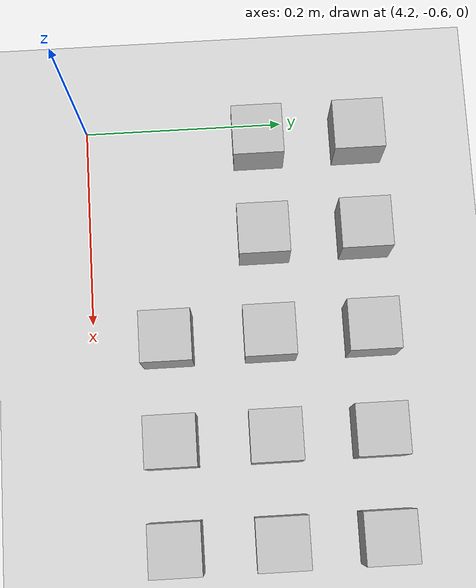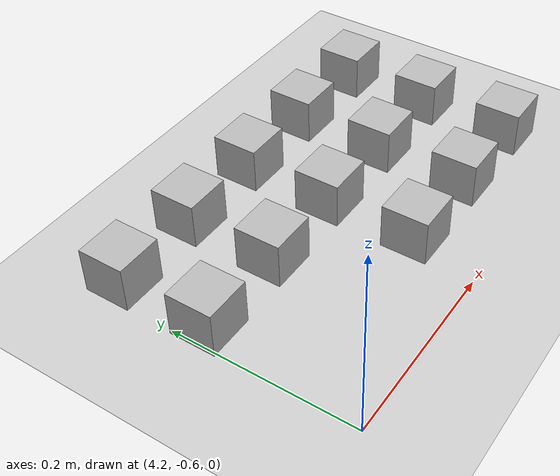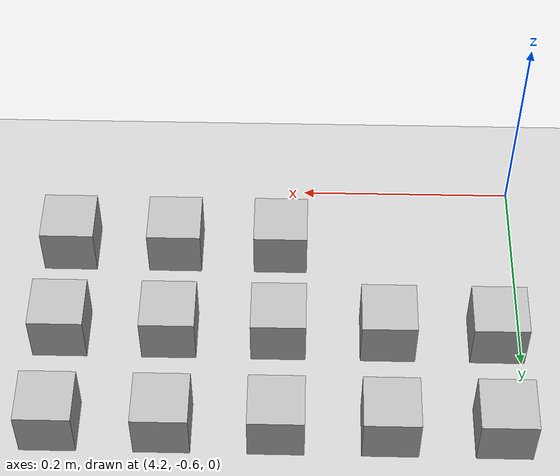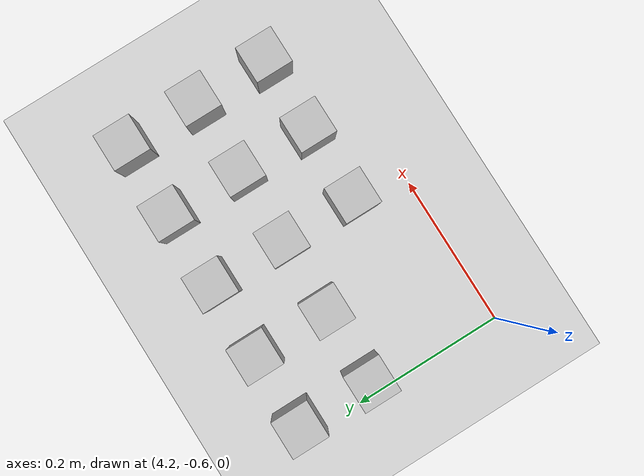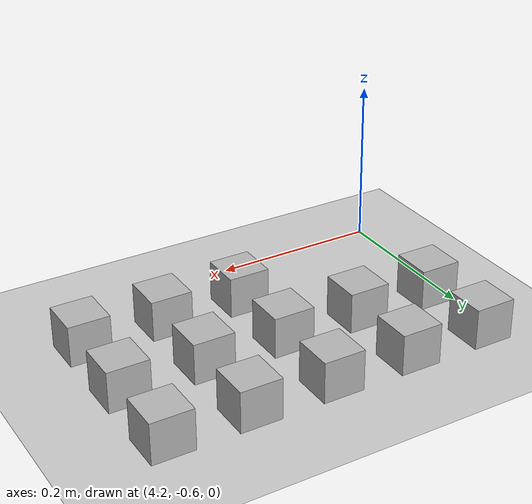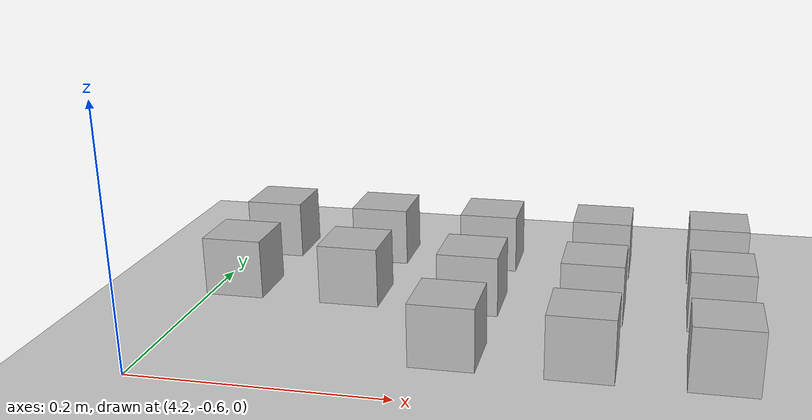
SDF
<sdf version="1.6">
 <world name="default">
  <model name="ground_plane">
   <static>1</static>
   <link name="link">
    <collision name="collision">
     <geometry><plane><normal>0 0 1</normal><size>100 100</size></plane></geometry>
     <surface><friction><ode><mu>100</mu><mu2>50</mu2></ode></friction></surface>
    </collision>
    <visual name="visual">
     <cast_shadows>0</cast_shadows>
     <geometry><plane><normal>0 0 1</normal><size>100 100</size></plane></geometry>
     <material>
      <script><uri>file://media/materials/scripts/gazebo.material</uri><name>Gazebo/Grey</name></script>
     </material>
    </visual>
   </link>
  </model>
  <model name="at42">
   <static>0</static>
   <link name="link">
    <inertial>
     <mass>0.01</mass>
     <inertia><ixx>4e-05</ixx><ixy>0</ixy><ixz>0</ixz><iyy>4e-05</iyy><iyz>0</iyz><izz>4e-05</izz></inertia>
    </inertial>
    <visual name="visual">
     <geometry><box><size>0.05 0.05 0.05</size></box></geometry>
     <material>
      <script>
       <uri>model://at0/materials/scripts</uri>
       <uri>model://at0/materials/textures</uri>
       <name>at0/Diffuse</name>
      </script>
     </material>
    </visual>
    <collision name="collision">
     <geometry><box><size>0.05 0.05 0.05</size></box></geometry>
     <surface><friction><ode><mu>0.8</mu><mu2>0.7</mu2></ode></friction></surface>
    </collision>
   </link>
   <pose>4.42228 -0.52543 0.025 0 -0 0</pose>
  </model>
  <model name="at43">
   <static>0</static>
   <link name="link">
    <inertial>
     <mass>0.01</mass>
     <inertia><ixx>4e-05</ixx><ixy>0</ixy><ixz>0</ixz><iyy>4e-05</iyy><iyz>0</iyz><izz>4e-05</izz></inertia>
    </inertial>
    <visual name="visual">
     <geometry><box><size>0.05 0.05 0.05</size></box></geometry>
     <material>
      <script>
       <uri>model://at0/materials/scripts</uri>
       <uri>model://at0/materials/textures</uri>
       <name>at0/Diffuse</name>
      </script>
     </material>
    </visual>
    <collision name="collision">
     <geometry><box><size>0.05 0.05 0.05</size></box></geometry>
     <surface><friction><ode><mu>0.8</mu><mu2>0.7</mu2></ode></friction></surface>
    </collision>
   </link>
   <pose>4.52228 -0.52543 0.025 0 -0 0</pose>
  </model>
  <model name="at44">
   <static>0</static>
   <link name="link">
    <inertial>
     <mass>0.01</mass>
     <inertia><ixx>4e-05</ixx><ixy>0</ixy><ixz>0</ixz><iyy>4e-05</iyy><iyz>0</iyz><izz>4e-05</izz></inertia>
    </inertial>
    <visual name="visual">
     <geometry><box><size>0.05 0.05 0.05</size></box></geometry>
     <material>
      <script>
       <uri>model://at0/materials/scripts</uri>
       <uri>model://at0/materials/textures</uri>
       <name>at0/Diffuse</name>
      </script>
     </material>
    </visual>
    <collision name="collision">
     <geometry><box><size>0.05 0.05 0.05</size></box></geometry>
     <surface><friction><ode><mu>0.8</mu><mu2>0.7</mu2></ode></friction></surface>
    </collision>
   </link>
   <pose>4.62228 -0.52543 0.025 0 -0 0</pose>
  </model>
  <model name="at48">
   <static>0</static>
   <link name="link">
    <inertial>
     <mass>0.01</mass>
     <inertia><ixx>4e-05</ixx><ixy>0</ixy><ixz>0</ixz><iyy>4e-05</iyy><iyz>0</iyz><izz>4e-05</izz></inertia>
    </inertial>
    <visual name="visual">
     <geometry><box><size>0.05 0.05 0.05</size></box></geometry>
     <material>
      <script>
       <uri>model://at0/materials/scripts</uri>
       <uri>model://at0/materials/textures</uri>
       <name>at0/Diffuse</name>
      </script>
     </material>
    </visual>
    <collision name="collision">
     <geometry><box><size>0.05 0.05 0.05</size></box></geometry>
     <surface><friction><ode><mu>0.8</mu><mu2>0.7</mu2></ode></friction></surface>
    </collision>
   </link>
   <pose>4.22228 -0.42543 0.025 0 -0 0</pose>
  </model>
  <model name="at49">
   <static>0</static>
   <link name="link">
    <inertial>
     <mass>0.01</mass>
     <inertia><ixx>4e-05</ixx><ixy>0</ixy><ixz>0</ixz><iyy>4e-05</iyy><iyz>0</iyz><izz>4e-05</izz></inertia>
    </inertial>
    <visual name="visual">
     <geometry><box><size>0.05 0.05 0.05</size></box></geometry>
     <material>
      <script>
       <uri>model://at0/materials/scripts</uri>
       <uri>model://at0/materials/textures</uri>
       <name>at0/Diffuse</name>
      </script>
     </material>
    </visual>
    <collision name="collision">
     <geometry><box><size>0.05 0.05 0.05</size></box></geometry>
     <surface><friction><ode><mu>0.8</mu><mu2>0.7</mu2></ode></friction></surface>
    </collision>
   </link>
   <pose>4.32228 -0.42543 0.025 0 -0 0</pose>
  </model>
  <model name="at50">
   <static>0</static>
   <link name="link">
    <inertial>
     <mass>0.01</mass>
     <inertia><ixx>4e-05</ixx><ixy>0</ixy><ixz>0</ixz><iyy>4e-05</iyy><iyz>0</iyz><izz>4e-05</izz></inertia>
    </inertial>
    <visual name="visual">
     <geometry><box><size>0.05 0.05 0.05</size></box></geometry>
     <material>
      <script>
       <uri>model://at0/materials/scripts</uri>
       <uri>model://at0/materials/textures</uri>
       <name>at0/Diffuse</name>
      </script>
     </material>
    </visual>
    <collision name="collision">
     <geometry><box><size>0.05 0.05 0.05</size></box></geometry>
     <surface><friction><ode><mu>0.8</mu><mu2>0.7</mu2></ode></friction></surface>
    </collision>
   </link>
   <pose>4.42228 -0.42543 0.025 0 -0 0</pose>
  </model>
  <model name="at51">
   <static>0</static>
   <link name="link">
    <inertial>
     <mass>0.01</mass>
     <inertia><ixx>4e-05</ixx><ixy>0</ixy><ixz>0</ixz><iyy>4e-05</iyy><iyz>0</iyz><izz>4e-05</izz></inertia>
    </inertial>
    <visual name="visual">
     <geometry><box><size>0.05 0.05 0.05</size></box></geometry>
     <material>
      <script>
       <uri>model://at0/materials/scripts</uri>
       <uri>model://at0/materials/textures</uri>
       <name>at0/Diffuse</name>
      </script>
     </material>
    </visual>
    <collision name="collision">
     <geometry><box><size>0.05 0.05 0.05</size></box></geometry>
     <surface><friction><ode><mu>0.8</mu><mu2>0.7</mu2></ode></friction></surface>
    </collision>
   </link>
   <pose>4.52228 -0.42543 0.025 0 -0 0</pose>
  </model>
  <model name="at52">
   <static>0</static>
   <link name="link">
    <inertial>
     <mass>0.01</mass>
     <inertia><ixx>4e-05</ixx><ixy>0</ixy><ixz>0</ixz><iyy>4e-05</iyy><iyz>0</iyz><izz>4e-05</izz></inertia>
    </inertial>
    <visual name="visual">
     <geometry><box><size>0.05 0.05 0.05</size></box></geometry>
     <material>
      <script>
       <uri>model://at0/materials/scripts</uri>
       <uri>model://at0/materials/textures</uri>
       <name>at0/Diffuse</name>
      </script>
     </material>
    </visual>
    <collision name="collision">
     <geometry><box><size>0.05 0.05 0.05</size></box></geometry>
     <surface><friction><ode><mu>0.8</mu><mu2>0.7</mu2></ode></friction></surface>
    </collision>
   </link>
   <pose>4.62228 -0.42543 0.025 0 -0 0</pose>
  </model>
  <model name="at56">
   <static>0</static>
   <link name="link">
    <inertial>
     <mass>0.01</mass>
     <inertia><ixx>4e-05</ixx><ixy>0</ixy><ixz>0</ixz><iyy>4e-05</iyy><iyz>0</iyz><izz>4e-05</izz></inertia>
    </inertial>
    <visual name="visual">
     <geometry><box><size>0.05 0.05 0.05</size></box></geometry>
     <material>
      <script>
       <uri>model://at0/materials/scripts</uri>
       <uri>model://at0/materials/textures</uri>
       <name>at0/Diffuse</name>
      </script>
     </material>
    </visual>
    <collision name="collision">
     <geometry><box><size>0.05 0.05 0.05</size></box></geometry>
     <surface><friction><ode><mu>0.8</mu><mu2>0.7</mu2></ode></friction></surface>
    </collision>
   </link>
   <pose>4.22228 -0.32543 0.025 0 -0 0</pose>
  </model>
  <model name="at57">
   <static>0</static>
   <link name="link">
    <inertial>
     <mass>0.01</mass>
     <inertia><ixx>4e-05</ixx><ixy>0</ixy><ixz>0</ixz><iyy>4e-05</iyy><iyz>0</iyz><izz>4e-05</izz></inertia>
    </inertial>
    <visual name="visual">
     <geometry><box><size>0.05 0.05 0.05</size></box></geometry>
     <material>
      <script>
       <uri>model://at0/materials/scripts</uri>
       <uri>model://at0/materials/textures</uri>
       <name>at0/Diffuse</name>
      </script>
     </material>
    </visual>
    <collision name="collision">
     <geometry><box><size>0.05 0.05 0.05</size></box></geometry>
     <surface><friction><ode><mu>0.8</mu><mu2>0.7</mu2></ode></friction></surface>
    </collision>
   </link>
   <pose>4.32228 -0.32543 0.025 0 -0 0</pose>
  </model>
  <model name="at58">
   <static>0</static>
   <link name="link">
    <inertial>
     <mass>0.01</mass>
     <inertia><ixx>4e-05</ixx><ixy>0</ixy><ixz>0</ixz><iyy>4e-05</iyy><iyz>0</iyz><izz>4e-05</izz></inertia>
    </inertial>
    <visual name="visual">
     <geometry><box><size>0.05 0.05 0.05</size></box></geometry>
     <material>
      <script>
       <uri>model://at0/materials/scripts</uri>
       <uri>model://at0/materials/textures</uri>
       <name>at0/Diffuse</name>
      </script>
     </material>
    </visual>
    <collision name="collision">
     <geometry><box><size>0.05 0.05 0.05</size></box></geometry>
     <surface><friction><ode><mu>0.8</mu><mu2>0.7</mu2></ode></friction></surface>
    </collision>
   </link>
   <pose>4.42228 -0.32543 0.025 0 -0 0</pose>
  </model>
  <model name="at59">
   <static>0</static>
   <link name="link">
    <inertial>
     <mass>0.01</mass>
     <inertia><ixx>4e-05</ixx><ixy>0</ixy><ixz>0</ixz><iyy>4e-05</iyy><iyz>0</iyz><izz>4e-05</izz></inertia>
    </inertial>
    <visual name="visual">
     <geometry><box><size>0.05 0.05 0.05</size></box></geometry>
     <material>
      <script>
       <uri>model://at0/materials/scripts</uri>
       <uri>model://at0/materials/textures</uri>
       <name>at0/Diffuse</name>
      </script>
     </material>
    </visual>
    <collision name="collision">
     <geometry><box><size>0.05 0.05 0.05</size></box></geometry>
     <surface><friction><ode><mu>0.8</mu><mu2>0.7</mu2></ode></friction></surface>
    </collision>
   </link>
   <pose>4.52228 -0.32543 0.025 0 -0 0</pose>
  </model>
  <model name="at60">
   <static>0</static>
   <link name="link">
    <inertial>
     <mass>0.01</mass>
     <inertia><ixx>4e-05</ixx><ixy>0</ixy><ixz>0</ixz><iyy>4e-05</iyy><iyz>0</iyz><izz>4e-05</izz></inertia>
    </inertial>
    <visual name="visual">
     <geometry><box><size>0.05 0.05 0.05</size></box></geometry>
     <material>
      <script>
       <uri>model://at0/materials/scripts</uri>
       <uri>model://at0/materials/textures</uri>
       <name>at0/Diffuse</name>
      </script>
     </material>
    </visual>
    <collision name="collision">
     <geometry><box><size>0.05 0.05 0.05</size></box></geometry>
     <surface><friction><ode><mu>0.8</mu><mu2>0.7</mu2></ode></friction></surface>
    </collision>
   </link>
   <pose>4.62228 -0.32543 0.025 0 -0 0</pose>
  </model>
 </world>
</sdf>
